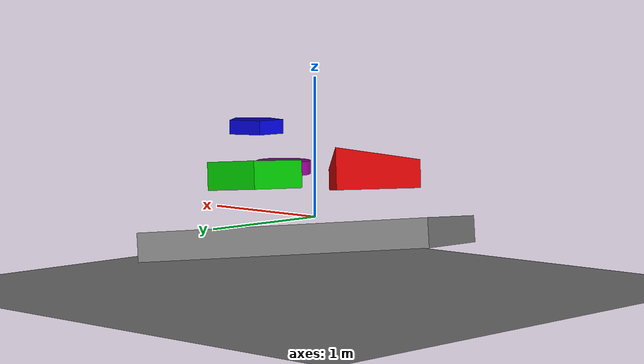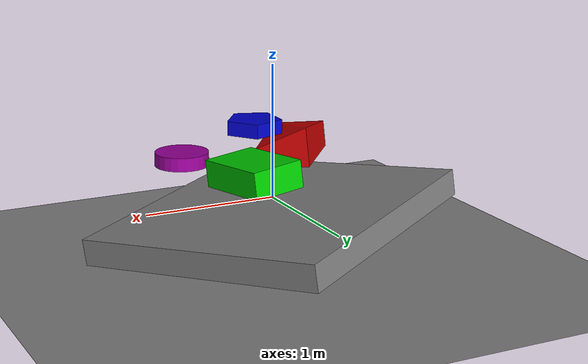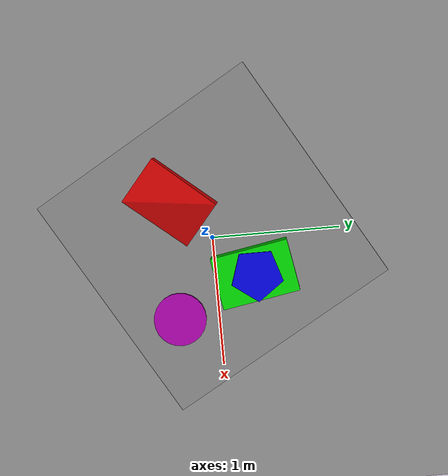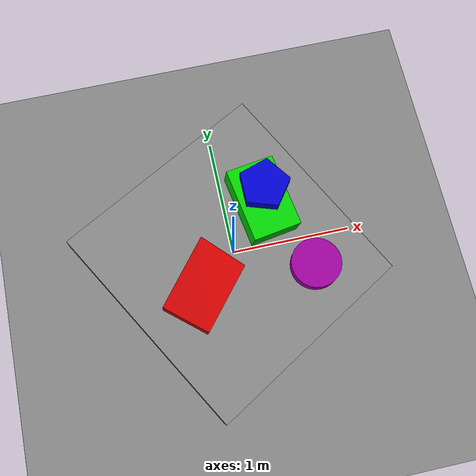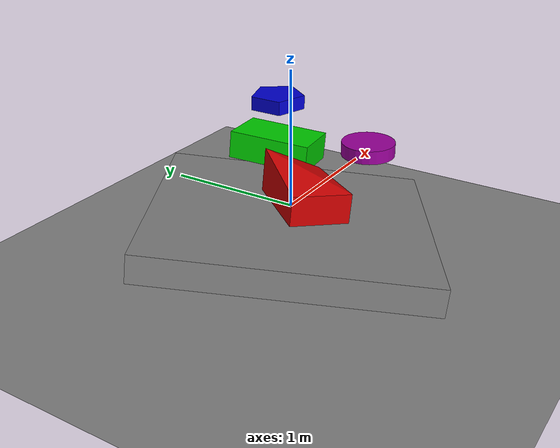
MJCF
<mujoco>
  <option noslip_iterations="2">
    <flag multiccd="enable"/>
  </option>

  <visual>
    <quality shadowsize="8192"/>
    <scale forcewidth="0.01" contactwidth="0.05" contactheight="0.05"/>
    <map force="0.1"/>
  </visual>

  <default>
    <geom solref=".006 1"/>
  </default>

  <asset>
      <texture name="skybox" type="skybox" builtin="gradient" rgb1=".4 .6 .8" rgb2="0 0 0"
               width="256" height="256" mark="random" markrgb="1 1 1" random="0.003"/>
    <mesh name="box" vertex="-1 -1 -1 1 -1 -1 1 1 -1 1 1 1 1 -1 1 -1 1 -1 -1 1 1 -1 -1 1"
          scale="1 1 .1"/>
    <mesh name="boxoid" vertex="-1 -1 -1 1 -1 -1 1 1 -1 1 1 1 1 -1 1 -1 1 -1 -1 1 .5 -1 -1 2"
          scale=".3 .2 .1"/>
    <mesh name="pentaprism" vertex="1 0 0 0.309 0.951 0 -0.809 0.588 0 -0.809 -0.588 0 0.309 -0.951 0
                                    1 0 1 0.309 0.951 1 -0.809 0.588 1 -0.809 -0.588 1 0.309 -0.951 1"
          scale=".2 .2 .1"/>
  </asset>
  <worldbody>
    <light pos="0 0 3"/>
    <light pos="2 2 2" dir="-1 -1 -1"/>
    <geom type="plane" pos="0 0 -.5" size="3 3 .01"/>
    <geom type="mesh" mesh="box" pos="0 0 -.15" euler="3 7 30"/>
    <body pos="-.3 -.3 .3">
      <freejoint/>
      <geom type="mesh" mesh="boxoid" rgba=".8 0 0 1" euler="3 5 -130"/>
    </body>
    <body pos=".3 .3 0.3">
      <freejoint/>
      <geom type="box" euler="3 5 -80" size=".3 .2 .1" rgba="0 .8 0 1"/>
    </body>
    <body pos=".3 .3 .6">
      <freejoint/>
      <geom type="mesh" mesh="pentaprism" rgba="0 0 .8 1"/>
    </body>
    <body pos=".6 -.3 .3">
      <freejoint/>
      <geom type="cylinder" size=".2 .05" rgba=".6 0 .6 1"/>
    </body>
  </worldbody>
</mujoco>
